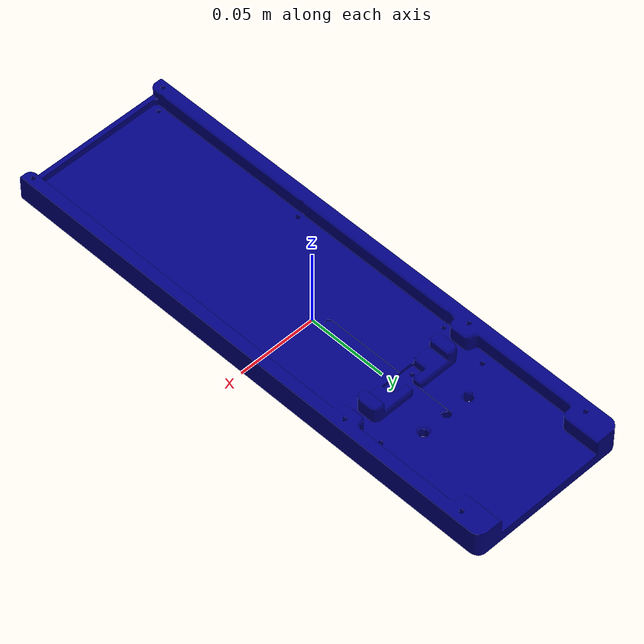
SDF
<?xml version="1.0" ?>
<sdf version="1.6">
  <model name="heating_plate_cover2">
    <link name="link">
      <gravity>false</gravity>
      <visual name="visual">
        <geometry>
          <mesh>
            <uri>file:///root/workcell_ws_classic/src/descriptions/ur_description/meshes/feeder/heater/objects/heating_plate_cover2.STL</uri>
            <scale>1 1 1</scale>
          </mesh>
        </geometry>
        <material>
          <!-- Navy blue color -->
          <ambient>0.05 0.05 0.2 1</ambient>
          <diffuse>0.0 0.0 0.5 1</diffuse>
          <specular>0.1 0.1 0.2 1</specular>
          <emissive>0 0 0 1</emissive>
        </material>
      </visual>

        <inertial>
          <mass>1.0</mass>
          <inertia>
            <ixx>0.0066667</ixx>
            <ixy>0</ixy>
            <ixz>0</ixz>
            <iyy>0.0066667</iyy>
            <iyz>0</iyz>
            <izz>0.0066667</izz>
          </inertia>
        </inertial>
    </link>
  </model>
</sdf>
